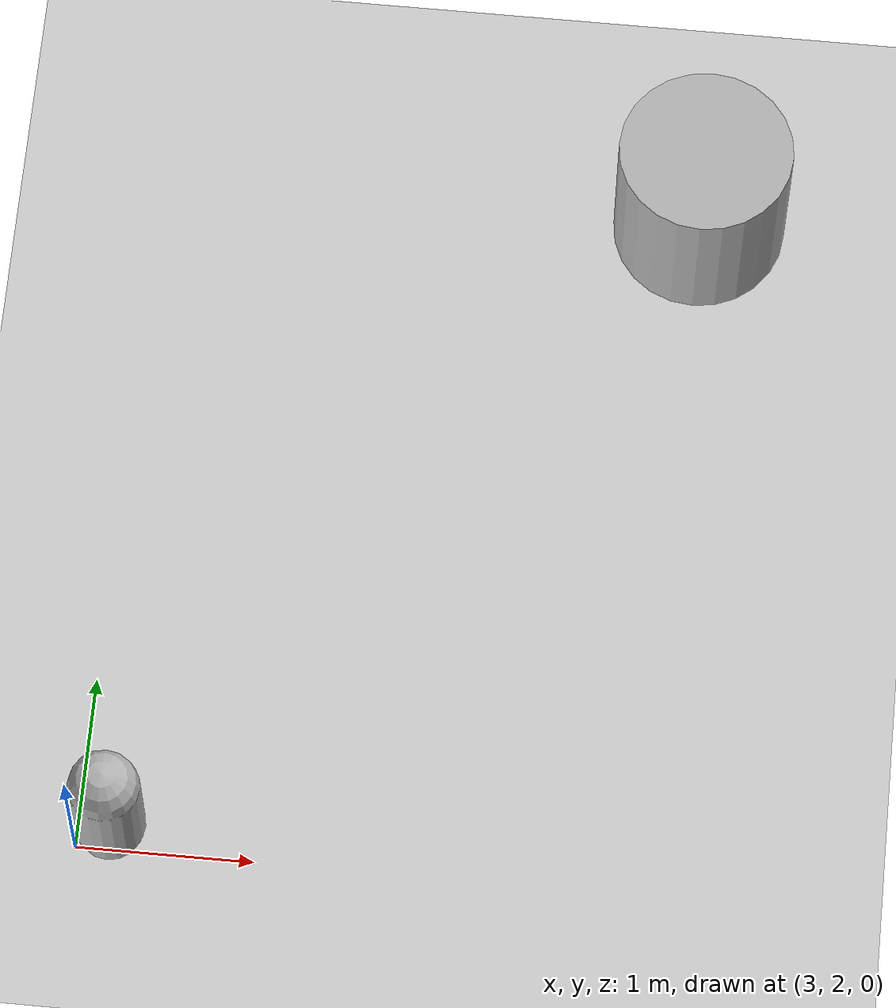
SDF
<sdf version='1.10'>
  <world name='empty'>
    <physics name='1ms' type='ignored'>
      <max_step_size>0.001</max_step_size>
      <real_time_factor>1</real_time_factor>
      <real_time_update_rate>1000</real_time_update_rate>
    </physics>
    <plugin name='gz::sim::systems::Physics' filename='gz-sim-physics-system'/>
    <plugin name='gz::sim::systems::UserCommands' filename='gz-sim-user-commands-system'/>
    <plugin name='gz::sim::systems::SceneBroadcaster' filename='gz-sim-scene-broadcaster-system'/>
    <plugin name='gz::sim::systems::Contact' filename='gz-sim-contact-system'/>
    <gravity>0 0 -9.8000000000000007</gravity>
    <magnetic_field>5.5644999999999998e-06 2.2875799999999999e-05 -4.2388400000000002e-05</magnetic_field>
    <atmosphere type='adiabatic'/>
    <scene>
      <ambient>0.400000006 0.400000006 0.400000006 1</ambient>
      <background>0.699999988 0.699999988 0.699999988 1</background>
      <shadows>true</shadows>
    </scene>
    <model name='ground_plane'>
      <static>true</static>
      <link name='link'>
        <collision name='collision'>
          <geometry>
            <plane>
              <normal>0 0 1</normal>
              <size>100 100</size>
            </plane>
          </geometry>
          <surface>
            <friction>
              <ode/>
            </friction>
            <bounce/>
            <contact/>
          </surface>
        </collision>
        <visual name='visual'>
          <geometry>
            <plane>
              <normal>0 0 1</normal>
              <size>100 100</size>
            </plane>
          </geometry>
          <material>
            <ambient>0.800000012 0.800000012 0.800000012 1</ambient>
            <diffuse>0.800000012 0.800000012 0.800000012 1</diffuse>
            <specular>0.800000012 0.800000012 0.800000012 1</specular>
          </material>
        </visual>
        <pose>0 0 0 0 0 0</pose>
        <inertial>
          <pose>0 0 0 0 0 0</pose>
          <mass>1</mass>
          <inertia>
            <ixx>1</ixx>
            <ixy>0</ixy>
            <ixz>0</ixz>
            <iyy>1</iyy>
            <iyz>0</iyz>
            <izz>1</izz>
          </inertia>
        </inertial>
        <enable_wind>false</enable_wind>
      </link>
      <pose>0 0 0 0 0 0</pose>
      <self_collide>false</self_collide>
    </model>
    <model name='capsule'>
      <pose>3.1933563905543139 2.0832830382935121 0.5 0 0 0</pose>
      <link name='capsule_link'>
        <inertial>
          <inertia>
            <ixx>0.074153999999999998</ixx>
            <ixy>0</ixy>
            <ixz>0</ixz>
            <iyy>0.074153999999999998</iyy>
            <iyz>0</iyz>
            <izz>0.018769000000000001</izz>
          </inertia>
          <mass>1</mass>
          <pose>0 0 0 0 0 0</pose>
        </inertial>
        <collision name='capsule_collision'>
          <geometry>
            <capsule>
              <radius>0.20000000000000001</radius>
              <length>0.59999999999999998</length>
            </capsule>
          </geometry>
          <surface>
            <friction>
              <ode/>
            </friction>
            <bounce/>
            <contact/>
          </surface>
        </collision>
        <visual name='capsule_visual'>
          <geometry>
            <capsule>
              <radius>0.20000000000000001</radius>
              <length>0.59999999999999998</length>
            </capsule>
          </geometry>
          <material>
            <ambient>0.300000012 0.300000012 0.300000012 1</ambient>
            <diffuse>0.699999988 0.699999988 0.699999988 1</diffuse>
            <specular>1 1 1 1</specular>
          </material>
        </visual>
        <pose>0 0 0 0 0 0</pose>
        <enable_wind>false</enable_wind>
      </link>
      <static>false</static>
      <self_collide>false</self_collide>
    </model>
    <model name='cylinder'>
      <pose>6.1752566936626341 6.1559735446062911 0.5 0 0 0</pose>
      <link name='cylinder_link'>
        <inertial>
          <inertia>
            <ixx>0.14580000000000001</ixx>
            <ixy>0</ixy>
            <ixz>0</ixz>
            <iyy>0.14580000000000001</iyy>
            <iyz>0</iyz>
            <izz>0.125</izz>
          </inertia>
          <mass>1</mass>
          <pose>0 0 0 0 0 0</pose>
        </inertial>
        <collision name='cylinder_collision'>
          <geometry>
            <cylinder>
              <radius>0.5</radius>
              <length>1</length>
            </cylinder>
          </geometry>
          <surface>
            <friction>
              <ode/>
            </friction>
            <bounce/>
            <contact/>
          </surface>
        </collision>
        <visual name='cylinder_visual'>
          <geometry>
            <cylinder>
              <radius>0.5</radius>
              <length>1</length>
            </cylinder>
          </geometry>
          <material>
            <ambient>0.300000012 0.300000012 0.300000012 1</ambient>
            <diffuse>0.699999988 0.699999988 0.699999988 1</diffuse>
            <specular>1 1 1 1</specular>
          </material>
        </visual>
        <pose>0 0 0 0 0 0</pose>
        <enable_wind>false</enable_wind>
      </link>
      <static>false</static>
      <self_collide>false</self_collide>
    </model>
    <light name='sun' type='directional'>
      <pose>0 0 10 0 0 0</pose>
      <cast_shadows>true</cast_shadows>
      <intensity>1</intensity>
      <direction>-0.5 0.10000000000000001 -0.90000000000000002</direction>
      <diffuse>0.800000012 0.800000012 0.800000012 1</diffuse>
      <specular>0.200000003 0.200000003 0.200000003 1</specular>
      <attenuation>
        <range>1000</range>
        <linear>0.01</linear>
        <constant>0.90000000000000002</constant>
        <quadratic>0.001</quadratic>
      </attenuation>
      <spot>
        <inner_angle>0</inner_angle>
        <outer_angle>0</outer_angle>
        <falloff>0</falloff>
      </spot>
    </light>
  </world>
</sdf>
